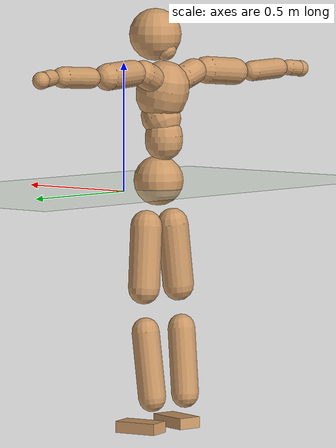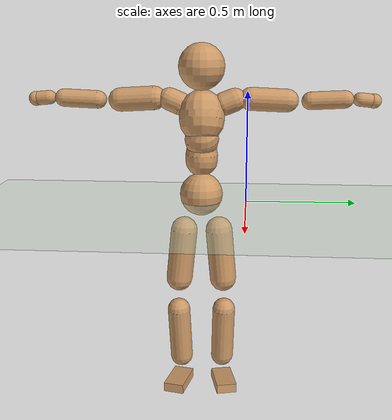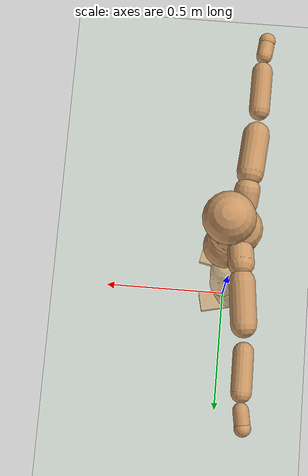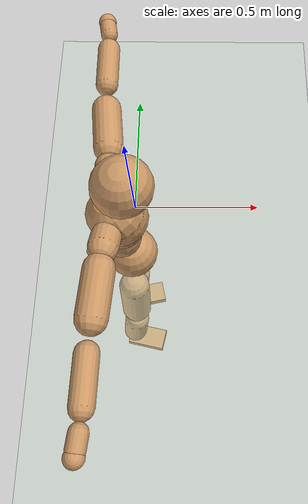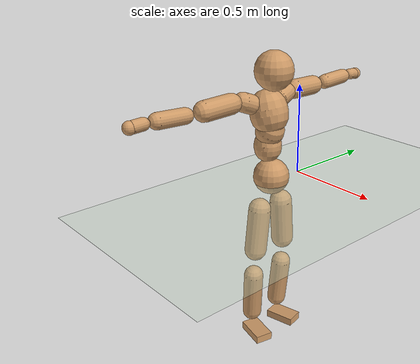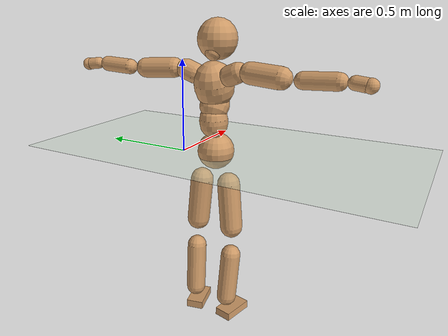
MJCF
<mujoco model="humanoid">
  <compiler coordinate="local" angle="radian"/>
  <default>
    <joint damping="0.0" armature="0.01" stiffness="0.0" limited="true"/>
    <geom conaffinity="1" condim="3" contype="7" margin="0.001" rgba="0.8 0.6 .4 1"/>
  </default>
  <asset>
    <texture type="skybox" builtin="gradient" rgb1=".4 .5 .6" rgb2="0 0 0" width="100" height="100"/>
    <texture builtin="flat" height="1278" mark="cross" markrgb="1 1 1" name="texgeom" random="0.01" rgb1="0.8 0.6 0.4" rgb2="0.8 0.6 0.4" type="cube" width="127"/>
    <texture builtin="checker" height="100" name="texplane" rgb1="0 0 0" rgb2="0.8 0.8 0.8" type="2d" width="100"/>
    <material name="MatPlane" reflectance="0.5" shininess="1" specular="1" texrepeat="60 60" texture="texplane"/>
    <material name="geom" texture="texgeom" texuniform="true"/>
  </asset>
  <worldbody>
    <light cutoff="100" diffuse="1 1 1" dir="-0 0 -1.3" directional="true" exponent="1" pos="0 0 1.3" specular=".1 .1 .1"/>
    <geom conaffinity="1" condim="3" name="floor" pos="0 0 0" rgba="0.8 0.9 0.8 1" size="100 100 .2" type="plane" material="MatPlane"/>
    <body name="Pelvis" pos="0.0004 -0.2056 0.0318">
      <freejoint name="Pelvis"/>
      <geom type="sphere" contype="1" conaffinity="1" density="500" size="0.0988" pos="0.0000 0.0000 0.0000" name="Pelvis"/>
      <body name="L_Hip" pos="-0.0057 0.0754 -0.0934">
        <joint name="L_Hip_x" type="hinge" pos="0 0 0" axis="1 0 0" stiffness="800" damping="80" armature="0.02" range="-180.0000 180.0000"/>
        <joint name="L_Hip_y" type="hinge" pos="0 0 0" axis="0 1 0" stiffness="800" damping="80" armature="0.02" range="-180.0000 180.0000"/>
        <joint name="L_Hip_z" type="hinge" pos="0 0 0" axis="0 0 1" stiffness="800" damping="80" armature="0.02" range="-180.0000 180.0000"/>
        <geom type="capsule" contype="1" conaffinity="1" density="500" fromto="-0.0022 0.0070 -0.0814 -0.0086 0.0282 -0.3258" size="0.0627" name="L_Hip"/>
        <body name="L_Knee" pos="-0.0108 0.0352 -0.4072">
          <joint name="L_Knee_x" type="hinge" pos="0 0 0" axis="1 0 0" stiffness="800" damping="80" armature="0.02" range="-180.0000 180.0000"/>
          <joint name="L_Knee_y" type="hinge" pos="0 0 0" axis="0 1 0" stiffness="800" damping="80" armature="0.02" range="-180.0000 180.0000"/>
          <joint name="L_Knee_z" type="hinge" pos="0 0 0" axis="0 0 1" stiffness="800" damping="80" armature="0.02" range="-180.0000 180.0000"/>
          <geom type="capsule" contype="1" conaffinity="1" density="500" fromto="-0.0095 -0.0025 -0.0874 -0.0379 -0.0098 -0.3497" size="0.0547" name="L_Knee"/>
          <body name="L_Ankle" pos="-0.0474 -0.0123 -0.4371">
            <joint name="L_Ankle_x" type="hinge" pos="0 0 0" axis="1 0 0" stiffness="800" damping="80" armature="0.02" range="-180.0000 180.0000"/>
            <joint name="L_Ankle_y" type="hinge" pos="0 0 0" axis="0 1 0" stiffness="800" damping="80" armature="0.02" range="-180.0000 180.0000"/>
            <joint name="L_Ankle_z" type="hinge" pos="0 0 0" axis="0 0 1" stiffness="800" damping="80" armature="0.02" range="-180.0000 180.0000"/>
            <geom type="box" contype="1" conaffinity="1" density="500" pos="0.0611 0.0136 -0.0312" size="0.086 0.0484 0.0225" quat="0.9940 0.0000 0.0000 0.1091" name="L_Ankle"/>
            <body name="L_Toe" pos="0.1221 0.0271 -0.0624">
              <joint name="L_Toe_x" type="hinge" pos="0 0 0" axis="1 0 0" stiffness="500" damping="50" armature="0.02" range="-180.0000 180.0000"/>
              <joint name="L_Toe_y" type="hinge" pos="0 0 0" axis="0 1 0" stiffness="500" damping="50" armature="0.02" range="-180.0000 180.0000"/>
              <joint name="L_Toe_z" type="hinge" pos="0 0 0" axis="0 0 1" stiffness="500" damping="50" armature="0.02" range="-180.0000 180.0000"/>
              <geom type="box" contype="1" conaffinity="1" density="500" pos="0.0000 0.0000 0.0307" size="0.001 0.0024 0.0011" quat="0.9934 0.0000 0.0000 0.1150" name="L_Toe"/>
            </body>
          </body>
        </body>
      </body>
      <body name="R_Hip" pos="-0.0013 -0.0729 -0.0931">
        <joint name="R_Hip_x" type="hinge" pos="0 0 0" axis="1 0 0" stiffness="800" damping="80" armature="0.02" range="-180.0000 180.0000"/>
        <joint name="R_Hip_y" type="hinge" pos="0 0 0" axis="0 1 0" stiffness="800" damping="80" armature="0.02" range="-180.0000 180.0000"/>
        <joint name="R_Hip_z" type="hinge" pos="0 0 0" axis="0 0 1" stiffness="800" damping="80" armature="0.02" range="-180.0000 180.0000"/>
        <geom type="capsule" contype="1" conaffinity="1" density="500" fromto="-0.0025 -0.0086 -0.0826 -0.0100 -0.0342 -0.3303" size="0.0618" name="R_Hip"/>
        <body name="R_Knee" pos="-0.0125 -0.0428 -0.4129">
          <joint name="R_Knee_x" type="hinge" pos="0 0 0" axis="1 0 0" stiffness="800" damping="80" armature="0.02" range="-180.0000 180.0000"/>
          <joint name="R_Knee_y" type="hinge" pos="0 0 0" axis="0 1 0" stiffness="800" damping="80" armature="0.02" range="-180.0000 180.0000"/>
          <joint name="R_Knee_z" type="hinge" pos="0 0 0" axis="0 0 1" stiffness="800" damping="80" armature="0.02" range="-180.0000 180.0000"/>
          <geom type="capsule" contype="1" conaffinity="1" density="500" fromto="-0.0092 0.0031 -0.0878 -0.0366 0.0125 -0.3514" size="0.0549" name="R_Knee"/>
          <body name="R_Ankle" pos="-0.0458 0.0156 -0.4392">
            <joint name="R_Ankle_x" type="hinge" pos="0 0 0" axis="1 0 0" stiffness="800" damping="80" armature="0.02" range="-180.0000 180.0000"/>
            <joint name="R_Ankle_y" type="hinge" pos="0 0 0" axis="0 1 0" stiffness="800" damping="80" armature="0.02" range="-180.0000 180.0000"/>
            <joint name="R_Ankle_z" type="hinge" pos="0 0 0" axis="0 0 1" stiffness="800" damping="80" armature="0.02" range="-180.0000 180.0000"/>
            <geom type="box" contype="1" conaffinity="1" density="500" pos="0.0633 -0.0136 -0.0263" size="0.0885 0.0489 0.0223" quat="0.9944 0.0000 0.0000 -0.1059" name="R_Ankle"/>
            <body name="R_Toe" pos="0.1266 -0.0273 -0.0525">
              <joint name="R_Toe_x" type="hinge" pos="0 0 0" axis="1 0 0" stiffness="500" damping="50" armature="0.02" range="-180.0000 180.0000"/>
              <joint name="R_Toe_y" type="hinge" pos="0 0 0" axis="0 1 0" stiffness="500" damping="50" armature="0.02" range="-180.0000 180.0000"/>
              <joint name="R_Toe_z" type="hinge" pos="0 0 0" axis="0 0 1" stiffness="500" damping="50" armature="0.02" range="-180.0000 180.0000"/>
              <geom type="box" contype="1" conaffinity="1" density="500" pos="0.0000 0.0000 0.0284" size="0.0009 0.0024 0.0012" quat="0.9953 0.0000 0.0000 -0.0968" name="R_Toe"/>
            </body>
          </body>
        </body>
      </body>
      <body name="Torso" pos="-0.0263 -0.0022 0.1072">
        <joint name="Torso_x" type="hinge" pos="0 0 0" axis="1 0 0" stiffness="1000" damping="100" armature="0.02" range="-180.0000 180.0000"/>
        <joint name="Torso_y" type="hinge" pos="0 0 0" axis="0 1 0" stiffness="1000" damping="100" armature="0.02" range="-180.0000 180.0000"/>
        <joint name="Torso_z" type="hinge" pos="0 0 0" axis="0 0 1" stiffness="1000" damping="100" armature="0.02" range="-180.0000 180.0000"/>
        <geom type="capsule" contype="1" conaffinity="1" density="500" fromto="-0.0012 0.0018 0.0708 -0.0008 0.0012 0.0472" size="0.0748" name="Torso"/>
        <body name="Spine" pos="-0.002 0.0029 0.1181">
          <joint name="Spine_x" type="hinge" pos="0 0 0" axis="1 0 0" stiffness="1000" damping="100" armature="0.02" range="-180.0000 180.0000"/>
          <joint name="Spine_y" type="hinge" pos="0 0 0" axis="0 1 0" stiffness="1000" damping="100" armature="0.02" range="-180.0000 180.0000"/>
          <joint name="Spine_z" type="hinge" pos="0 0 0" axis="0 0 1" stiffness="1000" damping="100" armature="0.02" range="-180.0000 180.0000"/>
          <geom type="capsule" contype="1" conaffinity="1" density="500" fromto="0.0172 0.0007 0.0305 0.0115 0.0005 0.0203" size="0.0774" name="Spine"/>
          <body name="Chest" pos="0.0287 0.0012 0.0508">
            <joint name="Chest_x" type="hinge" pos="0 0 0" axis="1 0 0" stiffness="1000" damping="100" armature="0.02" range="-180.0000 180.0000"/>
            <joint name="Chest_y" type="hinge" pos="0 0 0" axis="0 1 0" stiffness="1000" damping="100" armature="0.02" range="-180.0000 180.0000"/>
            <joint name="Chest_z" type="hinge" pos="0 0 0" axis="0 0 1" stiffness="1000" damping="100" armature="0.02" range="-180.0000 180.0000"/>
            <geom type="capsule" contype="1" conaffinity="1" density="500" fromto="-0.0273 -0.0012 0.0949 -0.0182 -0.0008 0.0633" size="0.1031" name="Chest"/>
            <body name="Neck" pos="-0.0469 -0.0034 0.2268">
              <joint name="Neck_x" type="hinge" pos="0 0 0" axis="1 0 0" stiffness="500" damping="50" armature="0.02" range="-180.0000 180.0000"/>
              <joint name="Neck_y" type="hinge" pos="0 0 0" axis="0 1 0" stiffness="500" damping="50" armature="0.02" range="-180.0000 180.0000"/>
              <joint name="Neck_z" type="hinge" pos="0 0 0" axis="0 0 1" stiffness="500" damping="50" armature="0.02" range="-180.0000 180.0000"/>
              <geom type="capsule" contype="1" conaffinity="1" density="500" fromto="0.0121 0.0008 0.0145 0.0486 0.0032 0.0580" size="0.0435" name="Neck"/>
              <body name="Head" pos="0.0607 0.004 0.0726">
                <joint name="Head_x" type="hinge" pos="0 0 0" axis="1 0 0" stiffness="500" damping="50" armature="0.02" range="-180.0000 180.0000"/>
                <joint name="Head_y" type="hinge" pos="0 0 0" axis="0 1 0" stiffness="500" damping="50" armature="0.02" range="-180.0000 180.0000"/>
                <joint name="Head_z" type="hinge" pos="0 0 0" axis="0 0 1" stiffness="500" damping="50" armature="0.02" range="-180.0000 180.0000"/>
                <geom type="sphere" contype="1" conaffinity="1" density="500" size="0.1032" pos="0.0000 0.0000 0.0000" name="Head"/>
              </body>
            </body>
            <body name="L_Thorax" pos="-0.0427 0.0778 0.1244">
              <joint name="L_Thorax_x" type="hinge" pos="0 0 0" axis="1 0 0" stiffness="500" damping="50" armature="0.02" range="-180.0000 180.0000"/>
              <joint name="L_Thorax_y" type="hinge" pos="0 0 0" axis="0 1 0" stiffness="500" damping="50" armature="0.02" range="-180.0000 180.0000"/>
              <joint name="L_Thorax_z" type="hinge" pos="0 0 0" axis="0 0 1" stiffness="500" damping="50" armature="0.02" range="-180.0000 180.0000"/>
              <geom type="capsule" contype="1" conaffinity="1" density="500" fromto="-0.0018 0.0170 0.0066 -0.0071 0.0679 0.0263" size="0.0526" name="L_Thorax"/>
              <body name="L_Shoulder" pos="-0.0089 0.0849 0.0328">
                <joint name="L_Shoulder_x" type="hinge" pos="0 0 0" axis="1 0 0" stiffness="500" damping="50" armature="0.02" range="-720.0000 720.0000"/>
                <joint name="L_Shoulder_y" type="hinge" pos="0 0 0" axis="0 1 0" stiffness="500" damping="50" armature="0.02" range="-720.0000 720.0000"/>
                <joint name="L_Shoulder_z" type="hinge" pos="0 0 0" axis="0 0 1" stiffness="500" damping="50" armature="0.02" range="-720.0000 720.0000"/>
                <geom type="capsule" contype="1" conaffinity="1" density="500" fromto="-0.0058 0.0547 -0.0029 -0.0232 0.2188 -0.0116" size="0.0521" name="L_Shoulder"/>
                <body name="L_Elbow" pos="-0.0289 0.2736 -0.0145">
                  <joint name="L_Elbow_x" type="hinge" pos="0 0 0" axis="1 0 0" stiffness="500" damping="50" armature="0.02" range="-720.0000 720.0000"/>
                  <joint name="L_Elbow_y" type="hinge" pos="0 0 0" axis="0 1 0" stiffness="500" damping="50" armature="0.02" range="-720.0000 720.0000"/>
                  <joint name="L_Elbow_z" type="hinge" pos="0 0 0" axis="0 0 1" stiffness="500" damping="50" armature="0.02" range="-720.0000 720.0000"/>
                  <geom type="capsule" contype="1" conaffinity="1" density="500" fromto="-0.0002 0.0508 0.0024 -0.0007 0.2033 0.0095" size="0.0405" name="L_Elbow"/>
                  <body name="L_Wrist" pos="-0.0009 0.2541 0.0119">
                    <joint name="L_Wrist_x" type="hinge" pos="0 0 0" axis="1 0 0" stiffness="300" damping="30" armature="0.02" range="-180.0000 180.0000"/>
                    <joint name="L_Wrist_y" type="hinge" pos="0 0 0" axis="0 1 0" stiffness="300" damping="30" armature="0.02" range="-180.0000 180.0000"/>
                    <joint name="L_Wrist_z" type="hinge" pos="0 0 0" axis="0 0 1" stiffness="300" damping="30" armature="0.02" range="-180.0000 180.0000"/>
                    <geom type="capsule" contype="1" conaffinity="1" density="500" fromto="-0.0027 0.0164 -0.0020 -0.0110 0.0657 -0.0080" size="0.031" name="L_Wrist"/>
                    <body name="L_Hand" pos="-0.0137 0.0822 -0.01">
                      <joint name="L_Hand_x" type="hinge" pos="0 0 0" axis="1 0 0" stiffness="300" damping="30" armature="0.02" range="-180.0000 180.0000"/>
                      <joint name="L_Hand_y" type="hinge" pos="0 0 0" axis="0 1 0" stiffness="300" damping="30" armature="0.02" range="-180.0000 180.0000"/>
                      <joint name="L_Hand_z" type="hinge" pos="0 0 0" axis="0 0 1" stiffness="300" damping="30" armature="0.02" range="-180.0000 180.0000"/>
                      <geom type="sphere" contype="1" conaffinity="1" density="500" size="0.0331" pos="0.0000 0.0000 0.0000" name="L_Hand"/>
                    </body>
                  </body>
                </body>
              </body>
            </body>
            <body name="R_Thorax" pos="-0.0472 -0.0805 0.1232">
              <joint name="R_Thorax_x" type="hinge" pos="0 0 0" axis="1 0 0" stiffness="500" damping="50" armature="0.02" range="-180.0000 180.0000"/>
              <joint name="R_Thorax_y" type="hinge" pos="0 0 0" axis="0 1 0" stiffness="500" damping="50" armature="0.02" range="-180.0000 180.0000"/>
              <joint name="R_Thorax_z" type="hinge" pos="0 0 0" axis="0 0 1" stiffness="500" damping="50" armature="0.02" range="-180.0000 180.0000"/>
              <geom type="capsule" contype="1" conaffinity="1" density="500" fromto="-0.0019 -0.0174 0.0071 -0.0074 -0.0694 0.0283" size="0.0516" name="R_Thorax"/>
              <body name="R_Shoulder" pos="-0.0093 -0.0868 0.0354">
                <joint name="R_Shoulder_x" type="hinge" pos="0 0 0" axis="1 0 0" stiffness="500" damping="50" armature="0.02" range="-720.0000 720.0000"/>
                <joint name="R_Shoulder_y" type="hinge" pos="0 0 0" axis="0 1 0" stiffness="500" damping="50" armature="0.02" range="-720.0000 720.0000"/>
                <joint name="R_Shoulder_z" type="hinge" pos="0 0 0" axis="0 0 1" stiffness="500" damping="50" armature="0.02" range="-720.0000 720.0000"/>
                <geom type="capsule" contype="1" conaffinity="1" density="500" fromto="-0.0049 -0.0531 -0.0034 -0.0196 -0.2125 -0.0138" size="0.0542" name="R_Shoulder"/>
                <body name="R_Elbow" pos="-0.0245 -0.2656 -0.0172">
                  <joint name="R_Elbow_x" type="hinge" pos="0 0 0" axis="1 0 0" stiffness="500" damping="50" armature="0.02" range="-720.0000 720.0000"/>
                  <joint name="R_Elbow_y" type="hinge" pos="0 0 0" axis="0 1 0" stiffness="500" damping="50" armature="0.02" range="-720.0000 720.0000"/>
                  <joint name="R_Elbow_z" type="hinge" pos="0 0 0" axis="0 0 1" stiffness="500" damping="50" armature="0.02" range="-720.0000 720.0000"/>
                  <geom type="capsule" contype="1" conaffinity="1" density="500" fromto="-0.0009 -0.0528 0.0024 -0.0034 -0.2111 0.0094" size="0.0413" name="R_Elbow"/>
                  <body name="R_Wrist" pos="-0.0043 -0.2639 0.0118">
                    <joint name="R_Wrist_x" type="hinge" pos="0 0 0" axis="1 0 0" stiffness="300" damping="30" armature="0.02" range="-180.0000 180.0000"/>
                    <joint name="R_Wrist_y" type="hinge" pos="0 0 0" axis="0 1 0" stiffness="300" damping="30" armature="0.02" range="-180.0000 180.0000"/>
                    <joint name="R_Wrist_z" type="hinge" pos="0 0 0" axis="0 0 1" stiffness="300" damping="30" armature="0.02" range="-180.0000 180.0000"/>
                    <geom type="capsule" contype="1" conaffinity="1" density="500" fromto="-0.0022 -0.0167 -0.0015 -0.0087 -0.0669 -0.0061" size="0.0321" name="R_Wrist"/>
                    <body name="R_Hand" pos="-0.0109 -0.0837 -0.0077">
                      <joint name="R_Hand_x" type="hinge" pos="0 0 0" axis="1 0 0" stiffness="300" damping="30" armature="0.02" range="-180.0000 180.0000"/>
                      <joint name="R_Hand_y" type="hinge" pos="0 0 0" axis="0 1 0" stiffness="300" damping="30" armature="0.02" range="-180.0000 180.0000"/>
                      <joint name="R_Hand_z" type="hinge" pos="0 0 0" axis="0 0 1" stiffness="300" damping="30" armature="0.02" range="-180.0000 180.0000"/>
                      <geom type="sphere" contype="1" conaffinity="1" density="500" size="0.0337" pos="0.0000 0.0000 0.0000" name="R_Hand"/>
                    </body>
                  </body>
                </body>
              </body>
            </body>
          </body>
        </body>
      </body>
    </body>
  </worldbody>
  <actuator>
    <motor name="L_Hip_x" joint="L_Hip_x" gear="500"/>
    <motor name="L_Hip_y" joint="L_Hip_y" gear="500"/>
    <motor name="L_Hip_z" joint="L_Hip_z" gear="500"/>
    <motor name="L_Knee_x" joint="L_Knee_x" gear="500"/>
    <motor name="L_Knee_y" joint="L_Knee_y" gear="500"/>
    <motor name="L_Knee_z" joint="L_Knee_z" gear="500"/>
    <motor name="L_Ankle_x" joint="L_Ankle_x" gear="500"/>
    <motor name="L_Ankle_y" joint="L_Ankle_y" gear="500"/>
    <motor name="L_Ankle_z" joint="L_Ankle_z" gear="500"/>
    <motor name="L_Toe_x" joint="L_Toe_x" gear="500"/>
    <motor name="L_Toe_y" joint="L_Toe_y" gear="500"/>
    <motor name="L_Toe_z" joint="L_Toe_z" gear="500"/>
    <motor name="R_Hip_x" joint="R_Hip_x" gear="500"/>
    <motor name="R_Hip_y" joint="R_Hip_y" gear="500"/>
    <motor name="R_Hip_z" joint="R_Hip_z" gear="500"/>
    <motor name="R_Knee_x" joint="R_Knee_x" gear="500"/>
    <motor name="R_Knee_y" joint="R_Knee_y" gear="500"/>
    <motor name="R_Knee_z" joint="R_Knee_z" gear="500"/>
    <motor name="R_Ankle_x" joint="R_Ankle_x" gear="500"/>
    <motor name="R_Ankle_y" joint="R_Ankle_y" gear="500"/>
    <motor name="R_Ankle_z" joint="R_Ankle_z" gear="500"/>
    <motor name="R_Toe_x" joint="R_Toe_x" gear="500"/>
    <motor name="R_Toe_y" joint="R_Toe_y" gear="500"/>
    <motor name="R_Toe_z" joint="R_Toe_z" gear="500"/>
    <motor name="Torso_x" joint="Torso_x" gear="500"/>
    <motor name="Torso_y" joint="Torso_y" gear="500"/>
    <motor name="Torso_z" joint="Torso_z" gear="500"/>
    <motor name="Spine_x" joint="Spine_x" gear="500"/>
    <motor name="Spine_y" joint="Spine_y" gear="500"/>
    <motor name="Spine_z" joint="Spine_z" gear="500"/>
    <motor name="Chest_x" joint="Chest_x" gear="500"/>
    <motor name="Chest_y" joint="Chest_y" gear="500"/>
    <motor name="Chest_z" joint="Chest_z" gear="500"/>
    <motor name="Neck_x" joint="Neck_x" gear="500"/>
    <motor name="Neck_y" joint="Neck_y" gear="500"/>
    <motor name="Neck_z" joint="Neck_z" gear="500"/>
    <motor name="Head_x" joint="Head_x" gear="500"/>
    <motor name="Head_y" joint="Head_y" gear="500"/>
    <motor name="Head_z" joint="Head_z" gear="500"/>
    <motor name="L_Thorax_x" joint="L_Thorax_x" gear="500"/>
    <motor name="L_Thorax_y" joint="L_Thorax_y" gear="500"/>
    <motor name="L_Thorax_z" joint="L_Thorax_z" gear="500"/>
    <motor name="L_Shoulder_x" joint="L_Shoulder_x" gear="500"/>
    <motor name="L_Shoulder_y" joint="L_Shoulder_y" gear="500"/>
    <motor name="L_Shoulder_z" joint="L_Shoulder_z" gear="500"/>
    <motor name="L_Elbow_x" joint="L_Elbow_x" gear="500"/>
    <motor name="L_Elbow_y" joint="L_Elbow_y" gear="500"/>
    <motor name="L_Elbow_z" joint="L_Elbow_z" gear="500"/>
    <motor name="L_Wrist_x" joint="L_Wrist_x" gear="500"/>
    <motor name="L_Wrist_y" joint="L_Wrist_y" gear="500"/>
    <motor name="L_Wrist_z" joint="L_Wrist_z" gear="500"/>
    <motor name="L_Hand_x" joint="L_Hand_x" gear="500"/>
    <motor name="L_Hand_y" joint="L_Hand_y" gear="500"/>
    <motor name="L_Hand_z" joint="L_Hand_z" gear="500"/>
    <motor name="R_Thorax_x" joint="R_Thorax_x" gear="500"/>
    <motor name="R_Thorax_y" joint="R_Thorax_y" gear="500"/>
    <motor name="R_Thorax_z" joint="R_Thorax_z" gear="500"/>
    <motor name="R_Shoulder_x" joint="R_Shoulder_x" gear="500"/>
    <motor name="R_Shoulder_y" joint="R_Shoulder_y" gear="500"/>
    <motor name="R_Shoulder_z" joint="R_Shoulder_z" gear="500"/>
    <motor name="R_Elbow_x" joint="R_Elbow_x" gear="500"/>
    <motor name="R_Elbow_y" joint="R_Elbow_y" gear="500"/>
    <motor name="R_Elbow_z" joint="R_Elbow_z" gear="500"/>
    <motor name="R_Wrist_x" joint="R_Wrist_x" gear="500"/>
    <motor name="R_Wrist_y" joint="R_Wrist_y" gear="500"/>
    <motor name="R_Wrist_z" joint="R_Wrist_z" gear="500"/>
    <motor name="R_Hand_x" joint="R_Hand_x" gear="500"/>
    <motor name="R_Hand_y" joint="R_Hand_y" gear="500"/>
    <motor name="R_Hand_z" joint="R_Hand_z" gear="500"/>
  </actuator>
  <contact>
    <exclude body1="Torso" body2="Chest"/>
    <exclude body1="Head" body2="Chest"/>
    <exclude body1="R_Knee" body2="R_Toe"/>
    <exclude body1="R_Knee" body2="L_Ankle"/>
    <exclude body1="R_Knee" body2="L_Toe"/>
    <exclude body1="L_Knee" body2="L_Toe"/>
    <exclude body1="L_Knee" body2="R_Ankle"/>
    <exclude body1="L_Knee" body2="R_Toe"/>
    <exclude body1="L_Shoulder" body2="Chest"/>
    <exclude body1="R_Shoulder" body2="Chest"/>
  </contact>
  <sensor/>
  <size njmax="700" nconmax="700"/>
</mujoco>
